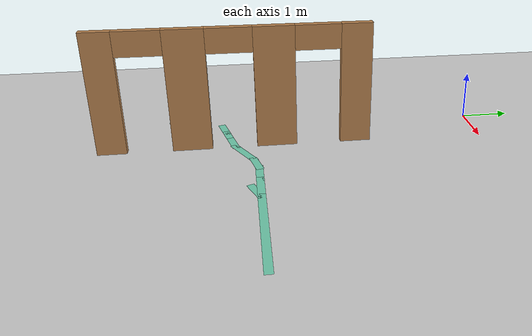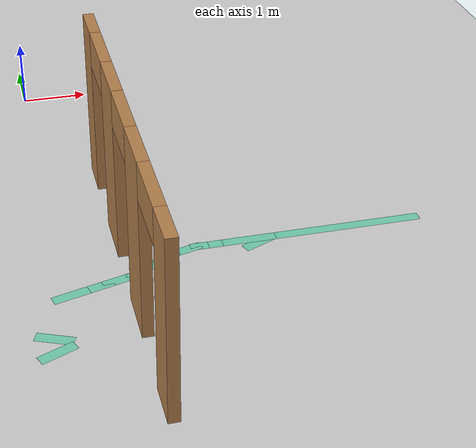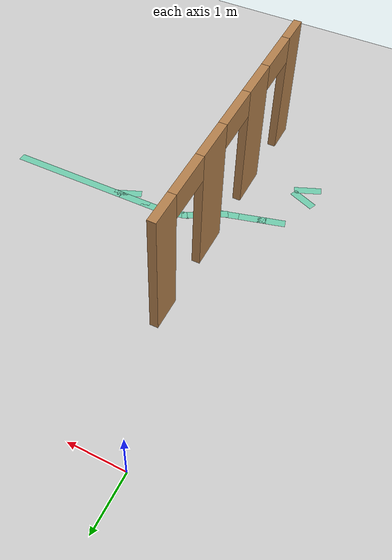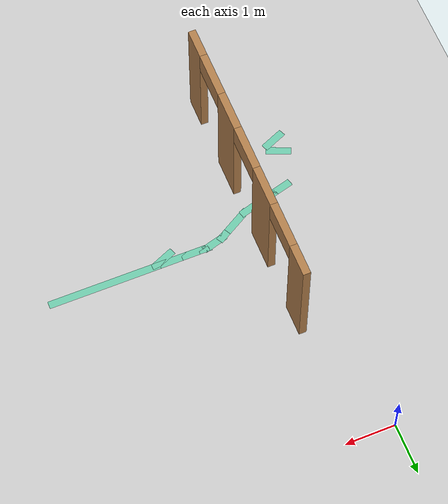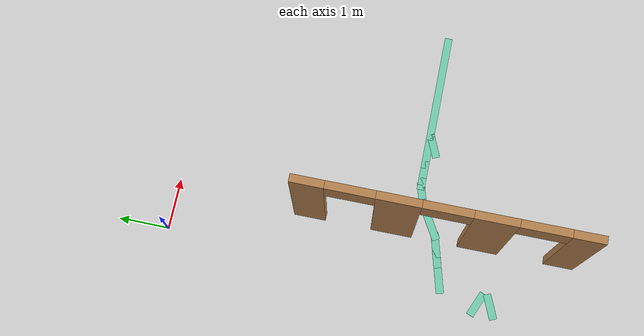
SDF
<sdf version="1.6">
 <world name="default">
  <model name="ground_plane">
   <static>1</static>
   <link name="link">
    <collision name="collision">
     <geometry><plane><normal>0 0 1</normal><size>100 100</size></plane></geometry>
     <surface><friction><ode><mu>100</mu><mu2>50</mu2></ode></friction></surface>
    </collision>
    <visual name="visual">
     <cast_shadows>0</cast_shadows>
     <geometry><plane><normal>0 0 1</normal><size>100 100</size></plane></geometry>
     <material>
      <script><uri>file://media/materials/scripts/gazebo.material</uri><name>Gazebo/Grey</name></script>
     </material>
    </visual>
   </link>
  </model>
  <model name="Untitled1">
   <pose>0.840887 -5.10393 0 0 -0 0</pose>
   <link name="Wall_0">
    <pose>0 -0 0 0 -0 -1.5708</pose>
    <visual name="Wall_0_Visual_0">
     <pose>-2.44031 0 1.25 0 -0 0</pose>
     <geometry><box><size>0.619384 0.15 2.5</size></box></geometry>
     <material>
      <script><uri>file://media/materials/scripts/gazebo.material</uri><name>Gazebo/Wood</name></script>
      <ambient>1 1 1 1</ambient>
     </material>
     <meta><layer>0</layer></meta>
    </visual>
    <collision name="Wall_0_Collision_0">
     <geometry><box><size>0.619384 0.15 2.5</size></box></geometry>
     <pose>-2.44031 0 1.25 0 -0 0</pose>
    </collision>
    <visual name="Wall_0_Visual_1">
     <pose>-0.825789 0 1.25 0 -0 0</pose>
     <geometry><box><size>0.809654 0.15 2.5</size></box></geometry>
     <material>
      <script><uri>file://media/materials/scripts/gazebo.material</uri><name>Gazebo/Wood</name></script>
      <ambient>1 1 1 1</ambient>
     </material>
     <meta><layer>0</layer></meta>
    </visual>
    <collision name="Wall_0_Collision_1">
     <geometry><box><size>0.809654 0.15 2.5</size></box></geometry>
     <pose>-0.825789 0 1.25 0 -0 0</pose>
    </collision>
    <visual name="Wall_0_Visual_2">
     <pose>0.873808 0 1.25 0 -0 0</pose>
     <geometry><box><size>0.78954 0.15 2.5</size></box></geometry>
     <material>
      <script><uri>file://media/materials/scripts/gazebo.material</uri><name>Gazebo/Wood</name></script>
      <ambient>1 1 1 1</ambient>
     </material>
     <meta><layer>0</layer></meta>
    </visual>
    <collision name="Wall_0_Collision_2">
     <geometry><box><size>0.78954 0.15 2.5</size></box></geometry>
     <pose>0.873808 0 1.25 0 -0 0</pose>
    </collision>
    <visual name="Wall_0_Visual_3">
     <pose>2.45929 0 1.25 0 -0 0</pose>
     <geometry><box><size>0.581422 0.15 2.5</size></box></geometry>
     <material>
      <script><uri>file://media/materials/scripts/gazebo.material</uri><name>Gazebo/Wood</name></script>
      <ambient>1 1 1 1</ambient>
     </material>
     <meta><layer>0</layer></meta>
    </visual>
    <collision name="Wall_0_Collision_3">
     <geometry><box><size>0.581422 0.15 2.5</size></box></geometry>
     <pose>2.45929 0 1.25 0 -0 0</pose>
    </collision>
    <visual name="Wall_0_Visual_4">
     <pose>-1.68062 0 2.25 0 -0 0</pose>
     <geometry><box><size>0.9 0.15 0.5</size></box></geometry>
     <material>
      <script><uri>file://media/materials/scripts/gazebo.material</uri><name>Gazebo/Wood</name></script>
      <ambient>1 1 1 1</ambient>
     </material>
     <meta><layer>0</layer></meta>
    </visual>
    <collision name="Wall_0_Collision_4">
     <geometry><box><size>0.9 0.15 0.5</size></box></geometry>
     <pose>-1.68062 0 2.25 0 -0 0</pose>
    </collision>
    <visual name="Wall_0_Visual_5">
     <pose>0.029038 0 2.25 0 -0 0</pose>
     <geometry><box><size>0.9 0.15 0.5</size></box></geometry>
     <material>
      <script><uri>file://media/materials/scripts/gazebo.material</uri><name>Gazebo/Wood</name></script>
      <ambient>1 1 1 1</ambient>
     </material>
     <meta><layer>0</layer></meta>
    </visual>
    <collision name="Wall_0_Collision_5">
     <geometry><box><size>0.9 0.15 0.5</size></box></geometry>
     <pose>0.029038 0 2.25 0 -0 0</pose>
    </collision>
    <visual name="Wall_0_Visual_6">
     <pose>1.71858 0 2.25 0 -0 0</pose>
     <geometry><box><size>0.9 0.15 0.5</size></box></geometry>
     <material>
      <script><uri>file://media/materials/scripts/gazebo.material</uri><name>Gazebo/Wood</name></script>
      <ambient>1 1 1 1</ambient>
     </material>
     <meta><layer>0</layer></meta>
    </visual>
    <collision name="Wall_0_Collision_6">
     <geometry><box><size>0.9 0.15 0.5</size></box></geometry>
     <pose>1.71858 0 2.25 0 -0 0</pose>
    </collision>
   </link>
   <static>1</static>
  </model>
  <model name="path_test">
   <link name="Wall_30_clone_clone_0_clone_clone_clone_0_clone">
    <pose>2.56492 -1.35959 0 0 0 -0.4</pose>
    <inertial>
     <mass>1</mass>
     <inertia><ixx>1</ixx><ixy>0</ixy><ixz>0</ixz><iyy>1</iyy><iyz>0</iyz><izz>1</izz></inertia>
    </inertial>
    <visual name="Wall_30_Visual">
     <geometry><box><size>0.5 0.15 0</size></box></geometry>
     <material>
      <script><uri>file://media/materials/scripts/gazebo.material</uri><name>Gazebo/Grey</name></script>
      <ambient>0.435 0.796 0.675 1</ambient>
      <shader type="pixel"><normal_map>__default__</normal_map></shader>
      <diffuse>0.7 0.7 0.7 1</diffuse>
      <specular>0.01 0.01 0.01 1</specular>
      <emissive>0 0 0 1</emissive>
     </material>
     <meta><layer>0</layer></meta>
    </visual>
    <collision name="Wall_30_Collision">
     <geometry><box><size>0.5 0.15 0</size></box></geometry>
     <surface>
      <friction>
       <ode><mu>1</mu><mu2>1</mu2><fdir1>0 0 0</fdir1><slip1>0</slip1><slip2>0</slip2></ode>
       <torsional>
        <coefficient>1</coefficient>
        <patch_radius>0</patch_radius>
        <surface_radius>0</surface_radius>
        <use_patch_radius>1</use_patch_radius>
        <ode><slip>0</slip></ode>
       </torsional>
      </friction>
      <bounce><restitution_coefficient>0</restitution_coefficient><threshold>1e+06</threshold></bounce>
      <contact>
       <collide_without_contact>0</collide_without_contact>
       <collide_without_contact_bitmask>1</collide_without_contact_bitmask>
       <collide_bitmask>1</collide_bitmask>
       <ode>
        <soft_cfm>0</soft_cfm>
        <soft_erp>0.2</soft_erp>
        <kp>1e+13</kp>
        <kd>1</kd>
        <max_vel>0.01</max_vel>
        <min_depth>0</min_depth>
       </ode>
       <bullet>
        <split_impulse>1</split_impulse>
        <split_impulse_penetration_threshold>-0.01</split_impulse_penetration_threshold>
        <soft_cfm>0</soft_cfm>
        <soft_erp>0.2</soft_erp>
        <kp>1e+13</kp>
        <kd>1</kd>
       </bullet>
      </contact>
     </surface>
    </collision>
   </link>
   <link name="Wall_30_clone_clone_clone_clone_clone_0_clone">
    <pose>2.56822 -1.61865 0 0 -0 0.4</pose>
    <inertial>
     <mass>1</mass>
     <inertia><ixx>1</ixx><ixy>0</ixy><ixz>0</ixz><iyy>1</iyy><iyz>0</iyz><izz>1</izz></inertia>
    </inertial>
    <visual name="Wall_30_Visual">
     <geometry><box><size>0.5 0.15 0</size></box></geometry>
     <material>
      <script><uri>file://media/materials/scripts/gazebo.material</uri><name>Gazebo/Grey</name></script>
      <ambient>0.435 0.796 0.675 1</ambient>
      <shader type="pixel"><normal_map>__default__</normal_map></shader>
      <diffuse>0.7 0.7 0.7 1</diffuse>
      <specular>0.01 0.01 0.01 1</specular>
      <emissive>0 0 0 1</emissive>
     </material>
     <meta><layer>0</layer></meta>
    </visual>
    <collision name="Wall_30_Collision">
     <geometry><box><size>0.5 0.15 0</size></box></geometry>
     <surface>
      <friction>
       <ode><mu>1</mu><mu2>1</mu2><fdir1>0 0 0</fdir1><slip1>0</slip1><slip2>0</slip2></ode>
       <torsional>
        <coefficient>1</coefficient>
        <patch_radius>0</patch_radius>
        <surface_radius>0</surface_radius>
        <use_patch_radius>1</use_patch_radius>
        <ode><slip>0</slip></ode>
       </torsional>
      </friction>
      <bounce><restitution_coefficient>0</restitution_coefficient><threshold>1e+06</threshold></bounce>
      <contact>
       <collide_without_contact>0</collide_without_contact>
       <collide_without_contact_bitmask>1</collide_without_contact_bitmask>
       <collide_bitmask>1</collide_bitmask>
       <ode>
        <soft_cfm>0</soft_cfm>
        <soft_erp>0.2</soft_erp>
        <kp>1e+13</kp>
        <kd>1</kd>
        <max_vel>0.01</max_vel>
        <min_depth>0</min_depth>
       </ode>
       <bullet>
        <split_impulse>1</split_impulse>
        <split_impulse_penetration_threshold>-0.01</split_impulse_penetration_threshold>
        <soft_cfm>0</soft_cfm>
        <soft_erp>0.2</soft_erp>
        <kp>1e+13</kp>
        <kd>1</kd>
       </bullet>
      </contact>
     </surface>
    </collision>
   </link>
   <link name="Wall_30_clone_clone_clone_clone_clone_clone">
    <pose>5.52735 0.006886 0 0 -0 0.4</pose>
    <inertial>
     <mass>1</mass>
     <inertia><ixx>1</ixx><ixy>0</ixy><ixz>0</ixz><iyy>1</iyy><iyz>0</iyz><izz>1</izz></inertia>
    </inertial>
    <visual name="Wall_30_Visual">
     <geometry><box><size>0.5 0.15 0</size></box></geometry>
     <material>
      <script><uri>file://media/materials/scripts/gazebo.material</uri><name>Gazebo/Grey</name></script>
      <ambient>0.435 0.796 0.675 1</ambient>
      <shader type="pixel"><normal_map>__default__</normal_map></shader>
      <diffuse>0.7 0.7 0.7 1</diffuse>
      <specular>0.01 0.01 0.01 1</specular>
      <emissive>0 0 0 1</emissive>
     </material>
     <meta><layer>0</layer></meta>
    </visual>
    <collision name="Wall_30_Collision">
     <geometry><box><size>0.5 0.15 0</size></box></geometry>
     <surface>
      <friction>
       <ode><mu>1</mu><mu2>1</mu2><fdir1>0 0 0</fdir1><slip1>0</slip1><slip2>0</slip2></ode>
       <torsional>
        <coefficient>1</coefficient>
        <patch_radius>0</patch_radius>
        <surface_radius>0</surface_radius>
        <use_patch_radius>1</use_patch_radius>
        <ode><slip>0</slip></ode>
       </torsional>
      </friction>
      <bounce><restitution_coefficient>0</restitution_coefficient><threshold>1e+06</threshold></bounce>
      <contact>
       <collide_without_contact>0</collide_without_contact>
       <collide_without_contact_bitmask>1</collide_without_contact_bitmask>
       <collide_bitmask>1</collide_bitmask>
       <ode>
        <soft_cfm>0</soft_cfm>
        <soft_erp>0.2</soft_erp>
        <kp>1e+13</kp>
        <kd>1</kd>
        <max_vel>0.01</max_vel>
        <min_depth>0</min_depth>
       </ode>
       <bullet>
        <split_impulse>1</split_impulse>
        <split_impulse_penetration_threshold>-0.01</split_impulse_penetration_threshold>
        <soft_cfm>0</soft_cfm>
        <soft_erp>0.2</soft_erp>
        <kp>1e+13</kp>
        <kd>1</kd>
       </bullet>
      </contact>
     </surface>
    </collision>
   </link>
   <link name="Wall_38">
    <pose>2.87062 -0.567333 0 0 -0 0.261799</pose>
    <visual name="Wall_38_Visual">
     <geometry><box><size>0.5 0.15 0</size></box></geometry>
     <material>
      <script><uri>file://media/materials/scripts/gazebo.material</uri><name>Gazebo/Grey</name></script>
      <ambient>0.435294 0.796078 0.67451 1</ambient>
      <shader type="pixel"/>
     </material>
     <meta><layer>0</layer></meta>
    </visual>
    <collision name="Wall_38_Collision">
     <geometry><box><size>0.5 0.15 0</size></box></geometry>
     <surface>
      <friction>
       <ode><mu>1</mu><mu2>1</mu2><fdir1>0 0 0</fdir1><slip1>0</slip1><slip2>0</slip2></ode>
       <torsional>
        <coefficient>1</coefficient>
        <patch_radius>0</patch_radius>
        <surface_radius>0</surface_radius>
        <use_patch_radius>1</use_patch_radius>
        <ode><slip>0</slip></ode>
       </torsional>
      </friction>
      <bounce><restitution_coefficient>0</restitution_coefficient><threshold>1e+06</threshold></bounce>
      <contact>
       <collide_without_contact>0</collide_without_contact>
       <collide_without_contact_bitmask>1</collide_without_contact_bitmask>
       <collide_bitmask>1</collide_bitmask>
       <ode>
        <soft_cfm>0</soft_cfm>
        <soft_erp>0.2</soft_erp>
        <kp>1e+13</kp>
        <kd>1</kd>
        <max_vel>0.01</max_vel>
        <min_depth>0</min_depth>
       </ode>
       <bullet>
        <split_impulse>1</split_impulse>
        <split_impulse_penetration_threshold>-0.01</split_impulse_penetration_threshold>
        <soft_cfm>0</soft_cfm>
        <soft_erp>0.2</soft_erp>
        <kp>1e+13</kp>
        <kd>1</kd>
       </bullet>
      </contact>
     </surface>
    </collision>
   </link>
   <link name="Wall_39">
    <pose>3.20869 -0.476747 0 0 -0 0.261799</pose>
    <visual name="Wall_39_Visual">
     <geometry><box><size>0.5 0.15 0</size></box></geometry>
     <material>
      <script><uri>file://media/materials/scripts/gazebo.material</uri><name>Gazebo/Grey</name></script>
      <ambient>0.435294 0.796078 0.67451 1</ambient>
      <shader type="pixel"/>
     </material>
     <meta><layer>0</layer></meta>
    </visual>
    <collision name="Wall_39_Collision">
     <geometry><box><size>0.5 0.15 0</size></box></geometry>
     <surface>
      <friction>
       <ode><mu>1</mu><mu2>1</mu2><fdir1>0 0 0</fdir1><slip1>0</slip1><slip2>0</slip2></ode>
       <torsional>
        <coefficient>1</coefficient>
        <patch_radius>0</patch_radius>
        <surface_radius>0</surface_radius>
        <use_patch_radius>1</use_patch_radius>
        <ode><slip>0</slip></ode>
       </torsional>
      </friction>
      <bounce><restitution_coefficient>0</restitution_coefficient><threshold>1e+06</threshold></bounce>
      <contact>
       <collide_without_contact>0</collide_without_contact>
       <collide_without_contact_bitmask>1</collide_without_contact_bitmask>
       <collide_bitmask>1</collide_bitmask>
       <ode>
        <soft_cfm>0</soft_cfm>
        <soft_erp>0.2</soft_erp>
        <kp>1e+13</kp>
        <kd>1</kd>
        <max_vel>0.01</max_vel>
        <min_depth>0</min_depth>
       </ode>
       <bullet>
        <split_impulse>1</split_impulse>
        <split_impulse_penetration_threshold>-0.01</split_impulse_penetration_threshold>
        <soft_cfm>0</soft_cfm>
        <soft_erp>0.2</soft_erp>
        <kp>1e+13</kp>
        <kd>1</kd>
       </bullet>
      </contact>
     </surface>
    </collision>
   </link>
   <link name="Wall_40">
    <pose>3.54676 -0.38616 0 0 -0 0.261799</pose>
    <visual name="Wall_40_Visual">
     <geometry><box><size>0.5 0.15 0</size></box></geometry>
     <material>
      <script><uri>file://media/materials/scripts/gazebo.material</uri><name>Gazebo/Grey</name></script>
      <ambient>0.435294 0.796078 0.67451 1</ambient>
      <shader type="pixel"/>
     </material>
     <meta><layer>0</layer></meta>
    </visual>
    <collision name="Wall_40_Collision">
     <geometry><box><size>0.5 0.15 0</size></box></geometry>
     <surface>
      <friction>
       <ode><mu>1</mu><mu2>1</mu2><fdir1>0 0 0</fdir1><slip1>0</slip1><slip2>0</slip2></ode>
       <torsional>
        <coefficient>1</coefficient>
        <patch_radius>0</patch_radius>
        <surface_radius>0</surface_radius>
        <use_patch_radius>1</use_patch_radius>
        <ode><slip>0</slip></ode>
       </torsional>
      </friction>
      <bounce><restitution_coefficient>0</restitution_coefficient><threshold>1e+06</threshold></bounce>
      <contact>
       <collide_without_contact>0</collide_without_contact>
       <collide_without_contact_bitmask>1</collide_without_contact_bitmask>
       <collide_bitmask>1</collide_bitmask>
       <ode>
        <soft_cfm>0</soft_cfm>
        <soft_erp>0.2</soft_erp>
        <kp>1e+13</kp>
        <kd>1</kd>
        <max_vel>0.01</max_vel>
        <min_depth>0</min_depth>
       </ode>
       <bullet>
        <split_impulse>1</split_impulse>
        <split_impulse_penetration_threshold>-0.01</split_impulse_penetration_threshold>
        <soft_cfm>0</soft_cfm>
        <soft_erp>0.2</soft_erp>
        <kp>1e+13</kp>
        <kd>1</kd>
       </bullet>
      </contact>
     </surface>
    </collision>
   </link>
   <link name="Wall_41">
    <pose>3.97561 -0.190867 0 0 -0 0.523599</pose>
    <visual name="Wall_41_Visual">
     <geometry><box><size>0.75 0.15 0</size></box></geometry>
     <material>
      <script><uri>file://media/materials/scripts/gazebo.material</uri><name>Gazebo/Grey</name></script>
      <ambient>0.435294 0.796078 0.67451 1</ambient>
      <shader type="pixel"/>
     </material>
     <meta><layer>0</layer></meta>
    </visual>
    <collision name="Wall_41_Collision">
     <geometry><box><size>0.75 0.15 0</size></box></geometry>
     <surface>
      <friction>
       <ode><mu>1</mu><mu2>1</mu2><fdir1>0 0 0</fdir1><slip1>0</slip1><slip2>0</slip2></ode>
       <torsional>
        <coefficient>1</coefficient>
        <patch_radius>0</patch_radius>
        <surface_radius>0</surface_radius>
        <use_patch_radius>1</use_patch_radius>
        <ode><slip>0</slip></ode>
       </torsional>
      </friction>
      <bounce><restitution_coefficient>0</restitution_coefficient><threshold>1e+06</threshold></bounce>
      <contact>
       <collide_without_contact>0</collide_without_contact>
       <collide_without_contact_bitmask>1</collide_without_contact_bitmask>
       <collide_bitmask>1</collide_bitmask>
       <ode>
        <soft_cfm>0</soft_cfm>
        <soft_erp>0.2</soft_erp>
        <kp>1e+13</kp>
        <kd>1</kd>
        <max_vel>0.01</max_vel>
        <min_depth>0</min_depth>
       </ode>
       <bullet>
        <split_impulse>1</split_impulse>
        <split_impulse_penetration_threshold>-0.01</split_impulse_penetration_threshold>
        <soft_cfm>0</soft_cfm>
        <soft_erp>0.2</soft_erp>
        <kp>1e+13</kp>
        <kd>1</kd>
       </bullet>
      </contact>
     </surface>
    </collision>
   </link>
   <link name="Wall_42">
    <pose>4.27872 -0.015867 0 0 -0 0.523599</pose>
    <visual name="Wall_42_Visual">
     <geometry><box><size>0.25 0.15 0</size></box></geometry>
     <material>
      <script><uri>file://media/materials/scripts/gazebo.material</uri><name>Gazebo/Grey</name></script>
      <ambient>0.435294 0.796078 0.67451 1</ambient>
      <shader type="pixel"/>
     </material>
     <meta><layer>0</layer></meta>
    </visual>
    <collision name="Wall_42_Collision">
     <geometry><box><size>0.25 0.15 0</size></box></geometry>
     <surface>
      <friction>
       <ode><mu>1</mu><mu2>1</mu2><fdir1>0 0 0</fdir1><slip1>0</slip1><slip2>0</slip2></ode>
       <torsional>
        <coefficient>1</coefficient>
        <patch_radius>0</patch_radius>
        <surface_radius>0</surface_radius>
        <use_patch_radius>1</use_patch_radius>
        <ode><slip>0</slip></ode>
       </torsional>
      </friction>
      <bounce><restitution_coefficient>0</restitution_coefficient><threshold>1e+06</threshold></bounce>
      <contact>
       <collide_without_contact>0</collide_without_contact>
       <collide_without_contact_bitmask>1</collide_without_contact_bitmask>
       <collide_bitmask>1</collide_bitmask>
       <ode>
        <soft_cfm>0</soft_cfm>
        <soft_erp>0.2</soft_erp>
        <kp>1e+13</kp>
        <kd>1</kd>
        <max_vel>0.01</max_vel>
        <min_depth>0</min_depth>
       </ode>
       <bullet>
        <split_impulse>1</split_impulse>
        <split_impulse_penetration_threshold>-0.01</split_impulse_penetration_threshold>
        <soft_cfm>0</soft_cfm>
        <soft_erp>0.2</soft_erp>
        <kp>1e+13</kp>
        <kd>1</kd>
       </bullet>
      </contact>
     </surface>
    </collision>
   </link>
   <link name="Wall_43">
    <pose>4.49106 0.054427 0 0 -0 0.261799</pose>
    <visual name="Wall_43_Visual">
     <geometry><box><size>0.5 0.15 0</size></box></geometry>
     <material>
      <script><uri>file://media/materials/scripts/gazebo.material</uri><name>Gazebo/Grey</name></script>
      <ambient>0.435294 0.796078 0.67451 1</ambient>
      <shader type="pixel"/>
     </material>
     <meta><layer>0</layer></meta>
    </visual>
    <collision name="Wall_43_Collision">
     <geometry><box><size>0.5 0.15 0</size></box></geometry>
     <surface>
      <friction>
       <ode><mu>1</mu><mu2>1</mu2><fdir1>0 0 0</fdir1><slip1>0</slip1><slip2>0</slip2></ode>
       <torsional>
        <coefficient>1</coefficient>
        <patch_radius>0</patch_radius>
        <surface_radius>0</surface_radius>
        <use_patch_radius>1</use_patch_radius>
        <ode><slip>0</slip></ode>
       </torsional>
      </friction>
      <bounce><restitution_coefficient>0</restitution_coefficient><threshold>1e+06</threshold></bounce>
      <contact>
       <collide_without_contact>0</collide_without_contact>
       <collide_without_contact_bitmask>1</collide_without_contact_bitmask>
       <collide_bitmask>1</collide_bitmask>
       <ode>
        <soft_cfm>0</soft_cfm>
        <soft_erp>0.2</soft_erp>
        <kp>1e+13</kp>
        <kd>1</kd>
        <max_vel>0.01</max_vel>
        <min_depth>0</min_depth>
       </ode>
       <bullet>
        <split_impulse>1</split_impulse>
        <split_impulse_penetration_threshold>-0.01</split_impulse_penetration_threshold>
        <soft_cfm>0</soft_cfm>
        <soft_erp>0.2</soft_erp>
        <kp>1e+13</kp>
        <kd>1</kd>
       </bullet>
      </contact>
     </surface>
    </collision>
   </link>
   <link name="Wall_44">
    <pose>4.71009 0.09972 0 0 -0 0</pose>
    <visual name="Wall_44_Visual">
     <geometry><box><size>0.25 0.15 0</size></box></geometry>
     <material>
      <script><uri>file://media/materials/scripts/gazebo.material</uri><name>Gazebo/Grey</name></script>
      <ambient>0.435294 0.796078 0.67451 1</ambient>
      <shader type="pixel"/>
     </material>
     <meta><layer>0</layer></meta>
    </visual>
    <collision name="Wall_44_Collision">
     <geometry><box><size>0.25 0.15 0</size></box></geometry>
     <surface>
      <friction>
       <ode><mu>1</mu><mu2>1</mu2><fdir1>0 0 0</fdir1><slip1>0</slip1><slip2>0</slip2></ode>
       <torsional>
        <coefficient>1</coefficient>
        <patch_radius>0</patch_radius>
        <surface_radius>0</surface_radius>
        <use_patch_radius>1</use_patch_radius>
        <ode><slip>0</slip></ode>
       </torsional>
      </friction>
      <bounce><restitution_coefficient>0</restitution_coefficient><threshold>1e+06</threshold></bounce>
      <contact>
       <collide_without_contact>0</collide_without_contact>
       <collide_without_contact_bitmask>1</collide_without_contact_bitmask>
       <collide_bitmask>1</collide_bitmask>
       <ode>
        <soft_cfm>0</soft_cfm>
        <soft_erp>0.2</soft_erp>
        <kp>1e+13</kp>
        <kd>1</kd>
        <max_vel>0.01</max_vel>
        <min_depth>0</min_depth>
       </ode>
       <bullet>
        <split_impulse>1</split_impulse>
        <split_impulse_penetration_threshold>-0.01</split_impulse_penetration_threshold>
        <soft_cfm>0</soft_cfm>
        <soft_erp>0.2</soft_erp>
        <kp>1e+13</kp>
        <kd>1</kd>
       </bullet>
      </contact>
     </surface>
    </collision>
   </link>
   <link name="Wall_45">
    <pose>4.93509 0.09972 0 0 -0 0</pose>
    <visual name="Wall_45_Visual">
     <geometry><box><size>0.5 0.15 0</size></box></geometry>
     <material>
      <script><uri>file://media/materials/scripts/gazebo.material</uri><name>Gazebo/Grey</name></script>
      <ambient>0.435294 0.796078 0.67451 1</ambient>
      <shader type="pixel"/>
     </material>
     <meta><layer>0</layer></meta>
    </visual>
    <collision name="Wall_45_Collision">
     <geometry><box><size>0.5 0.15 0</size></box></geometry>
     <surface>
      <friction>
       <ode><mu>1</mu><mu2>1</mu2><fdir1>0 0 0</fdir1><slip1>0</slip1><slip2>0</slip2></ode>
       <torsional>
        <coefficient>1</coefficient>
        <patch_radius>0</patch_radius>
        <surface_radius>0</surface_radius>
        <use_patch_radius>1</use_patch_radius>
        <ode><slip>0</slip></ode>
       </torsional>
      </friction>
      <bounce><restitution_coefficient>0</restitution_coefficient><threshold>1e+06</threshold></bounce>
      <contact>
       <collide_without_contact>0</collide_without_contact>
       <collide_without_contact_bitmask>1</collide_without_contact_bitmask>
       <collide_bitmask>1</collide_bitmask>
       <ode>
        <soft_cfm>0</soft_cfm>
        <soft_erp>0.2</soft_erp>
        <kp>1e+13</kp>
        <kd>1</kd>
        <max_vel>0.01</max_vel>
        <min_depth>0</min_depth>
       </ode>
       <bullet>
        <split_impulse>1</split_impulse>
        <split_impulse_penetration_threshold>-0.01</split_impulse_penetration_threshold>
        <soft_cfm>0</soft_cfm>
        <soft_erp>0.2</soft_erp>
        <kp>1e+13</kp>
        <kd>1</kd>
       </bullet>
      </contact>
     </surface>
    </collision>
   </link>
   <link name="Wall_46">
    <pose>5.41009 0.09972 0 0 -0 0</pose>
    <visual name="Wall_46_Visual">
     <geometry><box><size>0.75 0.15 0</size></box></geometry>
     <material>
      <script><uri>file://media/materials/scripts/gazebo.material</uri><name>Gazebo/Grey</name></script>
      <ambient>0.435294 0.796078 0.67451 1</ambient>
      <shader type="pixel"/>
     </material>
     <meta><layer>0</layer></meta>
    </visual>
    <collision name="Wall_46_Collision">
     <geometry><box><size>0.75 0.15 0</size></box></geometry>
     <surface>
      <friction>
       <ode><mu>1</mu><mu2>1</mu2><fdir1>0 0 0</fdir1><slip1>0</slip1><slip2>0</slip2></ode>
       <torsional>
        <coefficient>1</coefficient>
        <patch_radius>0</patch_radius>
        <surface_radius>0</surface_radius>
        <use_patch_radius>1</use_patch_radius>
        <ode><slip>0</slip></ode>
       </torsional>
      </friction>
      <bounce><restitution_coefficient>0</restitution_coefficient><threshold>1e+06</threshold></bounce>
      <contact>
       <collide_without_contact>0</collide_without_contact>
       <collide_without_contact_bitmask>1</collide_without_contact_bitmask>
       <collide_bitmask>1</collide_bitmask>
       <ode>
        <soft_cfm>0</soft_cfm>
        <soft_erp>0.2</soft_erp>
        <kp>1e+13</kp>
        <kd>1</kd>
        <max_vel>0.01</max_vel>
        <min_depth>0</min_depth>
       </ode>
       <bullet>
        <split_impulse>1</split_impulse>
        <split_impulse_penetration_threshold>-0.01</split_impulse_penetration_threshold>
        <soft_cfm>0</soft_cfm>
        <soft_erp>0.2</soft_erp>
        <kp>1e+13</kp>
        <kd>1</kd>
       </bullet>
      </contact>
     </surface>
    </collision>
   </link>
   <link name="Wall_48">
    <pose>6.76009 0.09972 0 0 -0 0</pose>
    <visual name="Wall_48_Visual">
     <geometry><box><size>2.25 0.15 0</size></box></geometry>
     <material>
      <script><uri>file://media/materials/scripts/gazebo.material</uri><name>Gazebo/Grey</name></script>
      <ambient>0.435294 0.796078 0.67451 1</ambient>
      <shader type="pixel"/>
     </material>
     <meta><layer>0</layer></meta>
    </visual>
    <collision name="Wall_48_Collision">
     <geometry><box><size>2.25 0.15 0</size></box></geometry>
     <surface>
      <friction>
       <ode><mu>1</mu><mu2>1</mu2><fdir1>0 0 0</fdir1><slip1>0</slip1><slip2>0</slip2></ode>
       <torsional>
        <coefficient>1</coefficient>
        <patch_radius>0</patch_radius>
        <surface_radius>0</surface_radius>
        <use_patch_radius>1</use_patch_radius>
        <ode><slip>0</slip></ode>
       </torsional>
      </friction>
      <bounce><restitution_coefficient>0</restitution_coefficient><threshold>1e+06</threshold></bounce>
      <contact>
       <collide_without_contact>0</collide_without_contact>
       <collide_without_contact_bitmask>1</collide_without_contact_bitmask>
       <collide_bitmask>1</collide_bitmask>
       <ode>
        <soft_cfm>0</soft_cfm>
        <soft_erp>0.2</soft_erp>
        <kp>1e+13</kp>
        <kd>1</kd>
        <max_vel>0.01</max_vel>
        <min_depth>0</min_depth>
       </ode>
       <bullet>
        <split_impulse>1</split_impulse>
        <split_impulse_penetration_threshold>-0.01</split_impulse_penetration_threshold>
        <soft_cfm>0</soft_cfm>
        <soft_erp>0.2</soft_erp>
        <kp>1e+13</kp>
        <kd>1</kd>
       </bullet>
      </contact>
     </surface>
    </collision>
   </link>
   <static>1</static>
   <pose>-2.83262 -4.78981 0.001 0 -0 0</pose>
  </model>
 </world>
</sdf>
